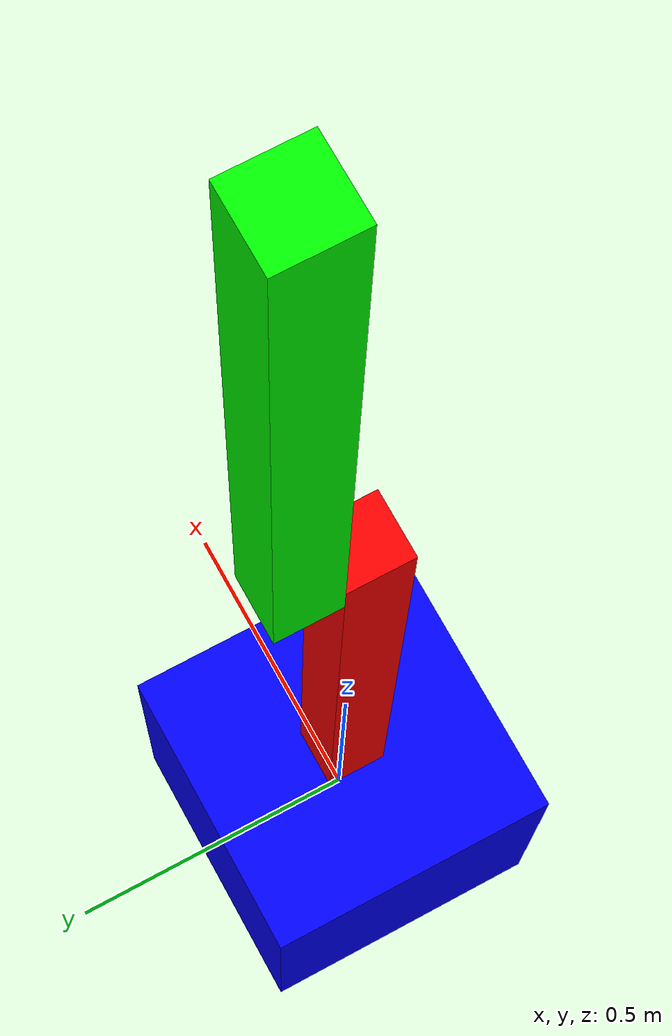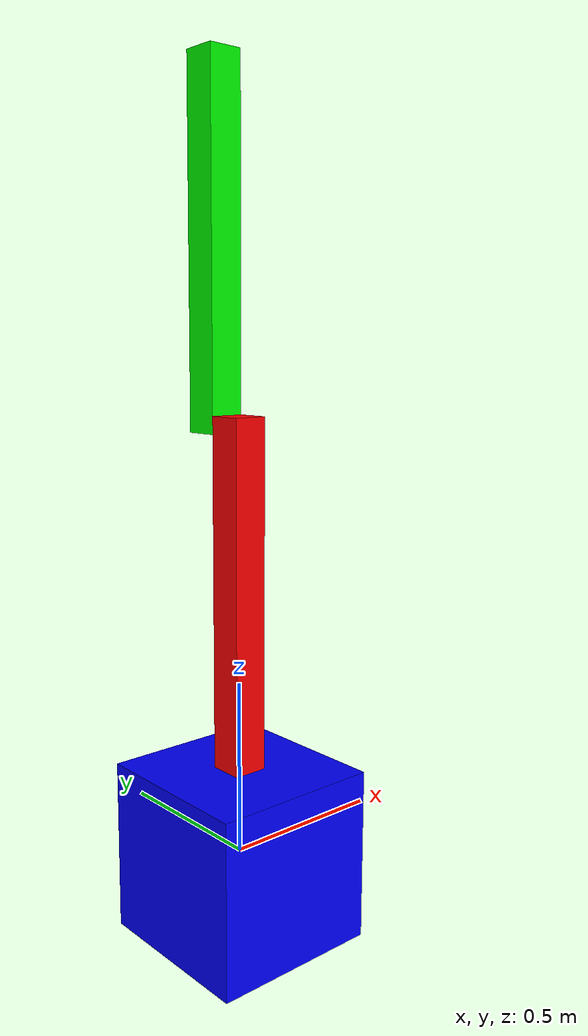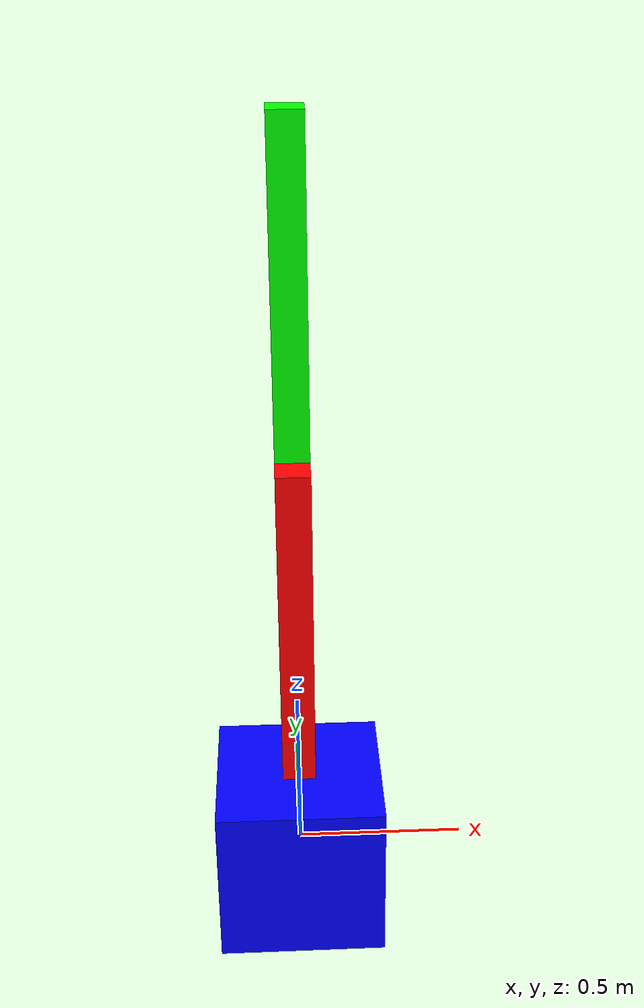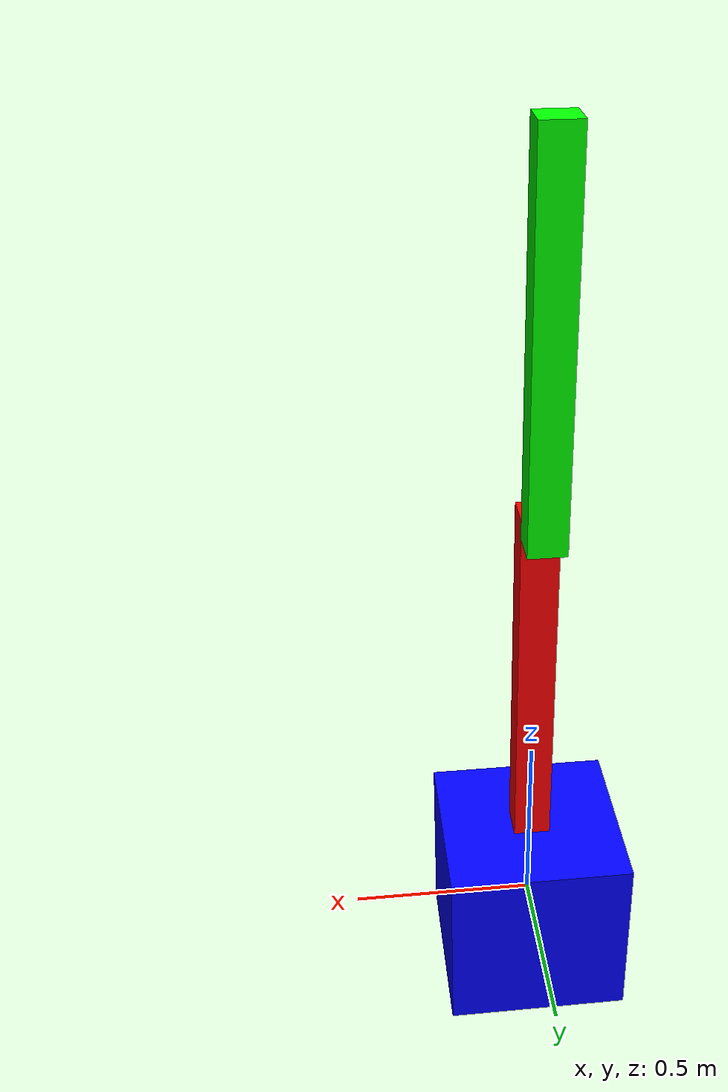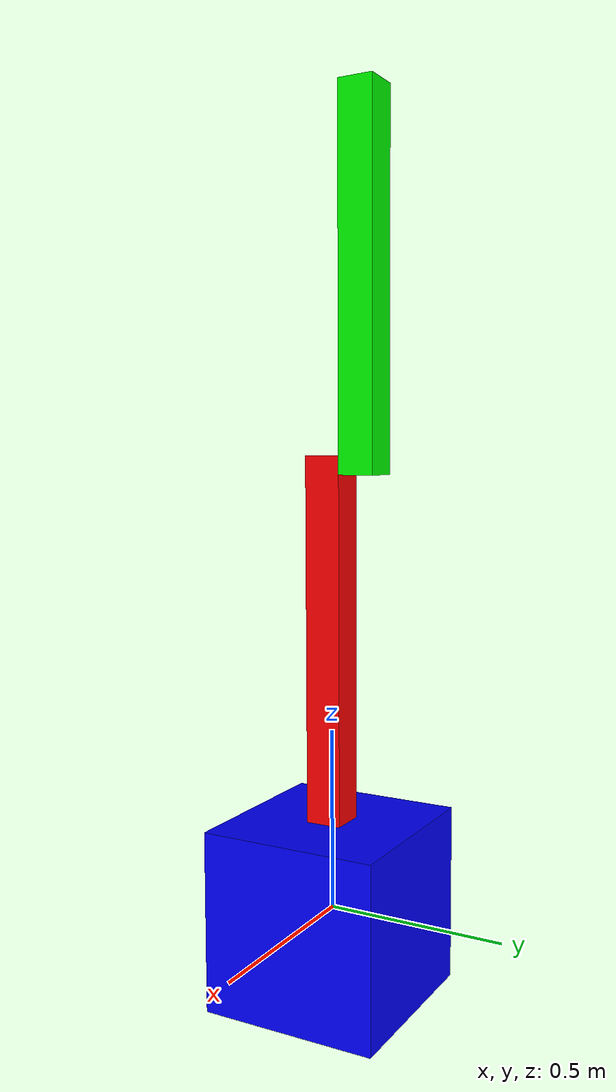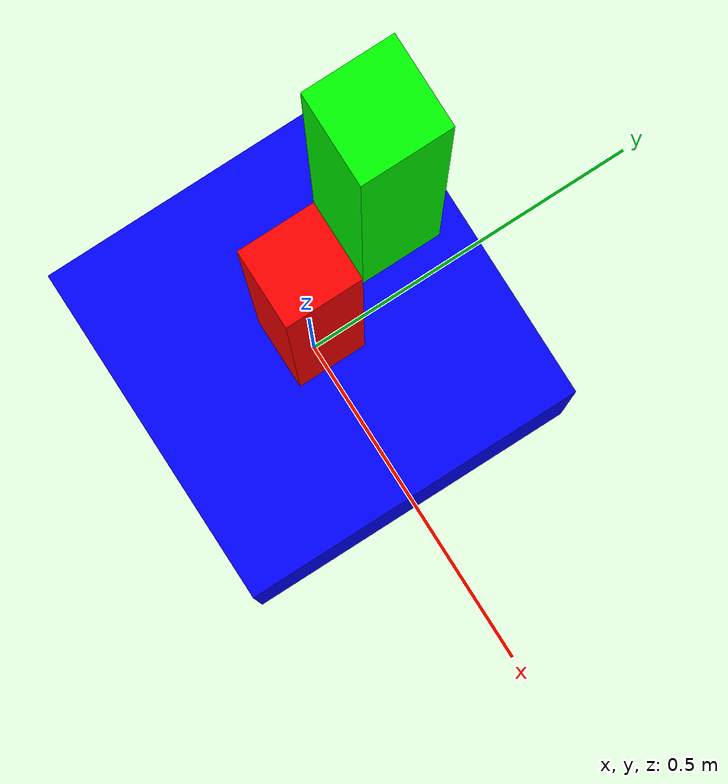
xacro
<?xml version="1.0"?>
<robot xmlns:xacro="http://www.ros.org/wiki/xacro" name="sja">

  <xacro:include filename="sja_color.xacro" />
  <xacro:include filename="sja_gazebo.xacro" />

  <link name="base_link">
    <inertial>
      <mass value="100.0"/>
      <origin xyz="0 0 0" rpy="0 0 0"/>
      <inertia ixx="0.1" ixy="0.0" ixz="0.0" iyy="0.1" iyz="0.0" izz="0.1"/>
    </inertial>
    <visual>
      <geometry>
        <box size="0.5 0.5 0.5"/>
      </geometry>
      <origin xyz="0 0 0" rpy="0 0 0"/>
      <material name="blue"/>
    </visual>
    <collision>
      <geometry>
        <box size="0.5 0.5 0.5"/>
      </geometry>
      <origin xyz="0 0 0" rpy="0 0 0"/>
    </collision>
  </link>

  <link name="link1">
    <inertial>
      <mass value="0.5"/>
      <origin xyz="0 0 0.5" rpy="0 0 0"/>
      <inertia ixx="0.01" ixy="0.0" ixz="0.0" iyy="0.1" iyz="0.0" izz="0.1"/>
    </inertial>
    <visual>
      <geometry>
        <box size="0.1 0.1 1"/>
      </geometry>
      <origin xyz="0 0 0.5" rpy="0 0 0"/>
      <material name="red"/>
    </visual>
    <collision>
      <geometry>
        <box size="0.1 0.1 1"/>
      </geometry>
      <origin xyz="0 0 0.5" rpy="0 0 0"/>
    </collision>
  </link>

  <link name="link2">
    <inertial>
      <mass value="0.5"/>
      <origin xyz="0 0 0.5" rpy="0 0 0"/>
      <inertia ixx="0.01" ixy="0.0" ixz="0.0" iyy="0.1" iyz="0.0" izz="0.1"/>
    </inertial>
    <visual>
      <geometry>
        <box size="0.1 0.1 1"/>
      </geometry>
      <origin xyz="0 0 0.5" rpy="0 0 0"/>
      <material name="green"/>
    </visual>
    <collision>
      <geometry>
        <box size="0.1 0.1 1"/>
      </geometry>
      <origin xyz="0 0 0.5" rpy="0 0 0"/>
    </collision>
  </link>

  <joint name="joint1" type="revolute">
    <parent link="base_link"/>
    <child link="link1"/>
    <origin xyz="0 0 0.25" rpy="0 0 0"/>
    <axis xyz="0 0 1"/>
    <limit lower="-1.57" upper="1.57" effort="100" velocity="1.0"/>
  </joint>

  <joint name="joint2" type="revolute">
    <parent link="link1"/>
    <child link="link2"/>
    <origin xyz="0 0.1 0.95" rpy="0 0 0"/>
    <axis xyz="0 1 0"/>
    <limit lower="-1.57" upper="1.57" effort="100" velocity="1.0"/>
  </joint>

  <ros2_control name="MyRobotHardware" type="system">
    <hardware>
      <plugin>gazebo_ros2_control/GazeboSystem</plugin>
    </hardware>
    <joint name="joint1">
      <command_interface name="position"/>
      <state_interface name="position"/>
      <state_interface name="velocity"/>
    </joint>
    <joint name="joint2">
      <command_interface name="position"/>
      <state_interface name="position"/>
      <state_interface name="velocity"/>
    </joint>
  </ros2_control>

</robot>

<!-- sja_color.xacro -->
<robot xmlns:xacro="http://www.ros.org/wiki/xacro">

    <material name="blue">
        <color rgba="0 0 1 1"/>
    </material>
    <material name="green">
        <color rgba="0 1 0 1"/>
    </material>
    <material name="red">
        <color rgba="1 0 0 1"/>
    </material>

</robot>
